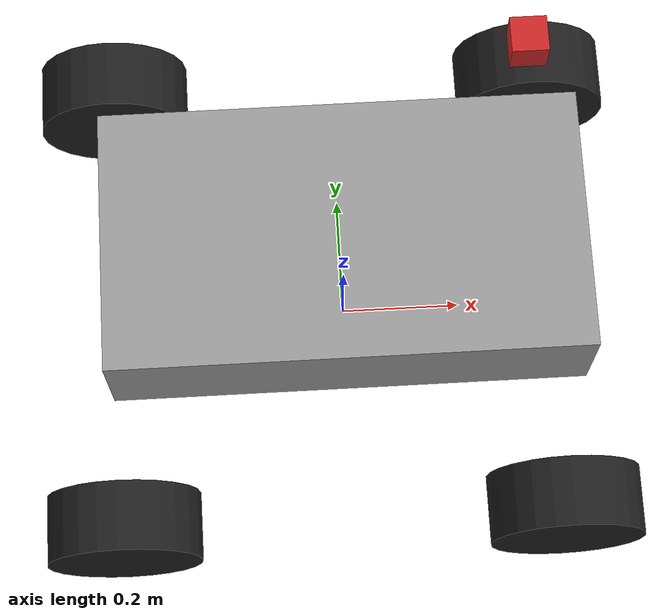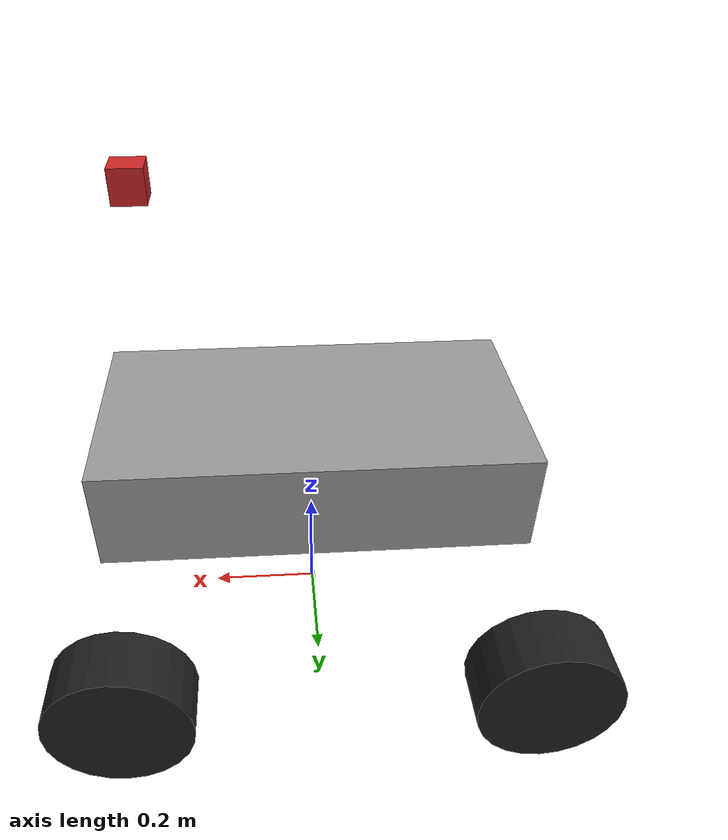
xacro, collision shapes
<?xml version='1.0'?>

<robot name="rosbob" xmlns:xacro="http://www.ros.org/wiki/xacro">
	<xacro:property name="robot_name" value="rosbob" />
	<xacro:property name="robot_chassis_mass" value="34.5"/>
	<xacro:property name="robot_chassis_length" value="0.7493"/>
	<xacro:property name="robot_chassis_width" value="0.41275"/>
    <xacro:property name="robot_chassis_height" value="0.1778"/>

	<xacro:property name="robot_wheel_mass" value="1"/>
	<xacro:property name="robot_wheel_length" value="0.112"/>
	<xacro:property name="robot_wheel_radius" value="0.127"/>

	<xacro:property name="camera_mass" value="0.1"/>
	<xacro:property name="hokoyu_mass" value="1e-5"/>
	<xacro:property name="pi" value="3.141592654"/>
	<xacro:property name="half_pi" value="1.570796327"/>

	<!-- Make Chassis of Bot -->
	<link name="base_link">
		<pose>0 0 0.1 0 0 0</pose>

		<inertial>
			<mass value="${robot_chassis_mass}"/>
      		<origin xyz="0.0 0 0" rpy=" 0 0 0"/>

      		<inertia
      			ixx="0.5806792822" ixy="0" ixz="0"
      			iyy="1.705057074" iyz="0"
      			izz="2.103962526"
      		/>
		</inertial>

		<collision name="collision">
			<origin xyz="0 0 0.3429" rpy=" 0 0 0"/>
			<geometry>
				<box size="${robot_chassis_length} ${robot_chassis_width} ${robot_chassis_height}"/>
			</geometry>
		</collision>

		<visual name="chassis_visual">
			<origin xyz="0 0 0.3429" rpy=" 0 0 ${half_pi}"/>
			<geometry>
				<mesh filename="package://rover_autonav/meshes_v2/base_link_armless.STL" />
			</geometry>

		</visual>

	</link>

	<!-- Right Wheel Back -->
	<link name="right_wheel_back">
		<inertial>
			<mass value="${robot_wheel_mass}"/>
			<origin xyz="0 0 0" rpy="0 0 1.5707"/>
			<inertia
				ixx="0.005077583333333333" ixy="0.0" ixz="0.0"
				iyy="0.0080645" iyz="0.0"
				izz="0.005077583333333333"
			/>
		</inertial>

		<visual>
			<origin xyz="0 0 0" rpy="1.5707 0.0 -1.5707"/>
			<geometry>
				<mesh filename="package://rover_autonav/meshes_v2/wheel.STL" />
			</geometry>
		</visual>

		<collision>
			<origin xyz="0 0 0" rpy="0 1.5707 1.5707"/>
			<geometry>
				<cylinder radius="${robot_wheel_radius}" length="${robot_wheel_length}"/>
			</geometry>
		</collision>

	</link>

	<!-- Right Wheel Front-->
	<link name="right_wheel_front">
		<inertial>
			<mass value="${robot_wheel_mass}"/>
			<origin xyz="0 0 0" rpy="0 1.5707 1.5707"/>
			<inertia
				ixx="0.005077583333333333" ixy="0.0" ixz="0.0"
				iyy="0.0080645" iyz="0.0"
				izz="0.005077583333333333"
			/>
		</inertial>

		<visual>
			<origin xyz="0 0 0" rpy="1.5707 0.0 -1.5707"/>
			<geometry>
				<mesh filename="package://rover_autonav/meshes_v2/wheel.STL" />
			</geometry>
		</visual>

		<collision>
			<origin xyz="0 0 0" rpy="0 1.5707 1.5707"/>
			<geometry>
				<cylinder radius="${robot_wheel_radius}" length="${robot_wheel_length}"/>
			</geometry>
		</collision>

	</link>

	<!-- Left wheel Back-->
	<link name="left_wheel_back">
		<inertial>
			<mass value="${robot_wheel_mass}"/>
			<origin xyz="0 0 0" rpy="0 1.5707 1.5707"/>
			<inertia
				ixx="0.005077583333333333" ixy="0.0" ixz="0.0"
				iyy="0.0080645" iyz="0.0"
				izz="0.005077583333333333"
			/>
		</inertial>

		<visual>
			<origin xyz="0 0 0" rpy="1.5707 0.0 1.5707"/>
			<geometry>
				<mesh filename="package://rover_autonav/meshes_v2/wheel.STL" />
			</geometry>
		</visual>

		<collision>
			<origin xyz="0 0 0" rpy="0 1.5707 1.5707"/>
			<geometry>
				<cylinder radius="${robot_wheel_radius}" length="${robot_wheel_length}"/>
			</geometry>
		</collision>

	</link>

	<!-- Left wheel Front-->
	<link name="left_wheel_front">
		<inertial>
			<mass value="${robot_wheel_mass}"/>
			<origin xyz="0 0 0" rpy="0 1.5707 1.5707"/>
			<inertia
				ixx="0.005077583333333333" ixy="0.0" ixz="0.0"
				iyy="0.0080645" iyz="0.0"
				izz="0.005077583333333333"
			/>
		</inertial>

		<visual>
			<origin xyz="0 0 0" rpy="1.5707 0.0 1.5707"/>
			<geometry>
				<mesh filename="package://rover_autonav/meshes_v2/wheel.STL" />
			</geometry>
		</visual>

		<collision>
			<origin xyz="0 0 0" rpy="0 1.5707 1.5707"/>
			<geometry>
				<cylinder radius="${robot_wheel_radius}" length="${robot_wheel_length}"/>
			</geometry>
		</collision>

	</link>

	<!-- Project center to the ground -->
	<link name="robot_footprint"></link>

	<!-- Hokuyo Lidar -->
	<link name="hokuyo">
		<inertial>
			<mass value="${hokoyu_mass}"/>
			<origin xyz="0 0 0" rpy="0 0 0"/>

			<inertia
		        ixx="1e-6" ixy="0.0" ixz="0.0"
		        iyy="1e-6" iyz="0.0"
		        izz="1e-6"
		      />
		</inertial>

		<visual>
			<origin xyz="0 0 0" rpy="0 0 0"/>
			<geometry>
				<mesh filename="package://rover_autonav/meshes/hokuyo.dae"/>
			</geometry>
		</visual>

		<collision>
			<origin xyz="0 0 0" rpy="0 0 0"/>
			<geometry>
				<box size="0.1 0.1 0.1"/>
			</geometry>
		</collision>
	</link>

		<!-- Define Joints -->

	<!-- Right Wheel Joint Back-->
	<joint type="continuous" name="right_wheel_hinge_back">
	    <origin xyz="-0.38 -0.38 0.081" rpy="0 0 0" />
	    <parent link="base_link"/>
	    <child link="right_wheel_back" />
	    <axis xyz="0 1 0" rpy="0 0 0" />
	    <limit effort="10000" velocity="1000" />
	    <dynamics damping="1.0" friction="1.0" />
	</joint>

	<!-- Right Wheel Joint Front-->
	<joint type="continuous" name="right_wheel_hinge_front">
	    <origin xyz="0.345 -0.38 0.081" rpy="0 0 0" />
	    <parent link="base_link"/>
	    <child link="right_wheel_front" />
	    <axis xyz="0 1 0" rpy="0 0 0" />
	    <limit effort="10000" velocity="1000" />
	    <dynamics damping="1.0" friction="1.0" />
	</joint>

	<!-- Left Wheel Joint Back-->
	<joint type="continuous" name="left_wheel_hinge_back">
	    <origin xyz="-0.38 0.38 0.081" rpy="0 0 0" />
	    <parent link="base_link"/>
	    <child link="left_wheel_back" />
	    <axis xyz="0 1 0" rpy="0 0 0" />
	    <limit effort="10000" velocity="1000" />
	    <dynamics damping="1.0" friction="1.0" />
	</joint>

	<!-- Left Wheel Joint Front-->
	<joint type="continuous" name="left_wheel_hinge_front">
	    <origin xyz="0.345 0.38 0.081" rpy="0 0 0" />
	    <parent link="base_link"/>
	    <child link="left_wheel_front" />
	    <axis xyz="0 1 0" rpy="0 0 0" />
	    <limit effort="10000" velocity="1000" />
	    <dynamics damping="1.0" friction="1.0" />
	</joint>

	<!-- Footprint joint-->
	<joint name="robot_footprint_joint" type="fixed">
		<origin xyz="0 0 0" rpy="0 0 0" />
		<parent link="robot_footprint"/>
		<child link="base_link" />
	</joint>

	<!-- Hokoyu Joint -->
	<joint name="hokuyo_joint" type="fixed">
	    <!--origin xyz="0.3 0 0.4629" rpy="0 0 0" /-->
 	    <origin xyz="0.3 0 0.1829" rpy="0 0 0" />
	    <parent link="base_link"/>
	    <child link="hokuyo" />
	    <axis xyz="0 1 0"/>
	</joint>

    <joint name="arm_fixed_joint" type="fixed">
      <parent link="base_link" />
      <child link = "arm_link" />
      <origin xyz="0.0 0.0 0.0" rpy="0.0 0.0 0.0" />
    </joint>

    <link name="arm_link">
      <collision>
        <geometry>
          <box size="0.01 0.01 0.01"/>
        </geometry>
        <origin rpy="0 0 0" xyz="0 0 0"/>
      </collision>
    </link>
<!-- Camera -->
	<link name="camera">
		<inertial>
			<mass value="${camera_mass}"/>
			<origin xyz="0 0 0" rpy="0 0 0"/>
			<inertia
		        ixx="1e-6" ixy="0.0" ixz="0.0"
		        iyy="1e-6" iyz="0.0"
		        izz="1e-6"
		      />
		</inertial>

		<visual>
			<origin xyz="0 0 0" rpy="0 0 0"/>
			<geometry>
			<mesh filename="package://rover_autonav/meshes/d435.dae"/>
				<!--box size="0.05 0.05 0.05"/-->
			</geometry>
		</visual>

		<collision>
			<origin xyz="0 0 0" rpy="0 0 0"/>
			<geometry>
				<box size="0.05 0.05 0.05"/>
			</geometry>
		</collision>
	</link>

 	<!-- Camera Joint -->
	<joint name="camera_joint" type="fixed">
		<origin xyz="0.25 0.1 0.8592" rpy="1.57 0 1.57" />
		<parent link="base_link"/>
		<child link="camera" />
		<axis xyz="0 1 0"/>
	</joint>

	<!-- Color of bot -->
	<gazebo reference="left_wheel_front">
		<material>Gazebo/Black</material>
		<kp>1000000.0</kp> <!-- kp and kd for rubber -->
		<kd>100.0</kd>
		<mu1>1.0</mu1>
		<mu2>1.0</mu2>
		<maxVel>1.0</maxVel>
		<minDepth>0.00</minDepth>
	</gazebo>

	<gazebo reference="left_wheel_back">
		<material>Gazebo/Black</material>
		<kp>1000000.0</kp> <!-- kp and kd for rubber -->
		<kd>100.0</kd>
		<mu1>1.0</mu1>
		<mu2>1.0</mu2>
		<maxVel>1.0</maxVel>
		<minDepth>0.00</minDepth>
	</gazebo>

	<gazebo reference="right_wheel_front">
		<material>Gazebo/Black</material>
		<kp>1000000.0</kp> <!-- kp and kd for rubber -->
		<kd>100.0</kd>
		<mu1>1.0</mu1>
		<mu2>1.0</mu2>
		<maxVel>1.0</maxVel>
		<minDepth>0.00</minDepth>
	</gazebo>
	<gazebo reference="right_wheel_back">
		<material>Gazebo/Black</material>
		<kp>1000000.0</kp> <!-- kp and kd for rubber -->
		<kd>100.0</kd>
		<mu1>1.0</mu1>
		<mu2>1.0</mu2>
		<maxVel>1.0</maxVel>
		<minDepth>0.00</minDepth>
	</gazebo>

	<gazebo reference="camera">
		<material>Gazebo/Red</material>
	</gazebo>

	<gazebo reference="base_link">
		<material>Gazebo/Grey</material>
	</gazebo>

	<!-- Motor, Camera and Lidar Simulation -->
	<xacro:include filename="$(find rover_autonav)/urdf/rosbob_v3.gazebo" />

</robot>
